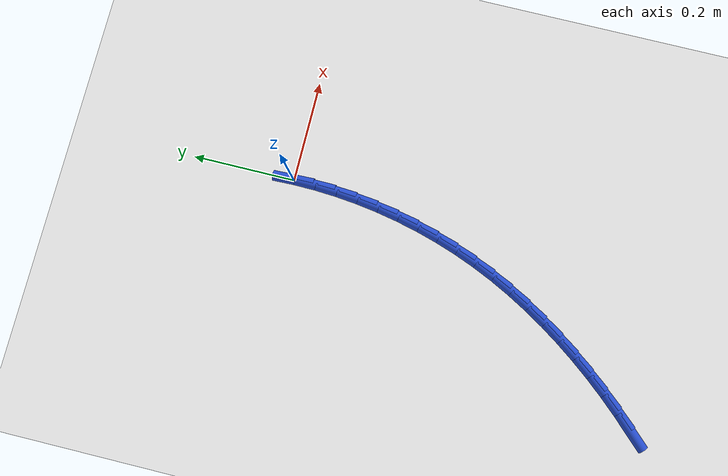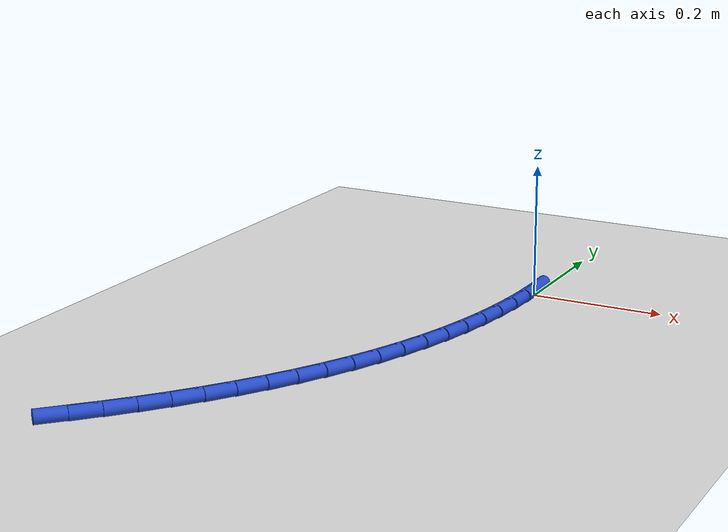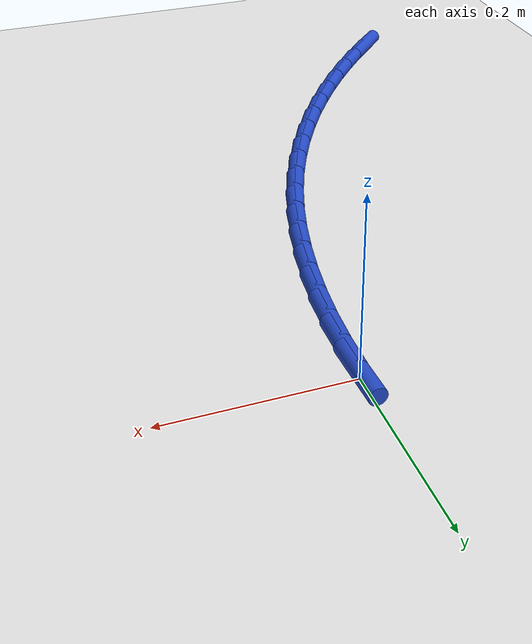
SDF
<sdf version="1.6">
 <world name="default">
  <model name="ground_plane">
   <static>1</static>
   <link name="link">
    <collision name="collision">
     <geometry><plane><normal>0 0 1</normal><size>100 100</size></plane></geometry>
     <surface><friction><ode><mu>100</mu><mu2>50</mu2></ode></friction></surface>
    </collision>
    <visual name="visual">
     <cast_shadows>0</cast_shadows>
     <geometry><plane><normal>0 0 1</normal><size>100 100</size></plane></geometry>
     <material>
      <script><uri>file://media/materials/scripts/gazebo.material</uri><name>Gazebo/WhiteGlow</name></script>
     </material>
    </visual>
   </link>
  </model>
  <model name="line">
   <link name="link_141">
    <pose>-0.3133545174314274 -0.7284267709780301 0.01 0 1.57 0.8107379526133516</pose>
    <collision name="collision">
     <geometry><cylinder><radius>0.01</radius><length>0.08</length></cylinder></geometry>
    </collision>
    <visual name="visual">
     <material>
      <script><name>Gazebo/Blue</name><uri>file://media/materials/scripts/gazebo.material</uri></script>
     </material>
     <geometry><cylinder><radius>0.01</radius><length>0.08</length></cylinder></geometry>
    </visual>
   </link>
   <link name="link_142">
    <pose>-0.2842198868301255 -0.6977768891015159 0.01 0 1.57 0.8430367750667596</pose>
    <collision name="collision">
     <geometry><cylinder><radius>0.01</radius><length>0.08</length></cylinder></geometry>
    </collision>
    <visual name="visual">
     <material>
      <script><name>Gazebo/Blue</name><uri>file://media/materials/scripts/gazebo.material</uri></script>
     </material>
     <geometry><cylinder><radius>0.01</radius><length>0.08</length></cylinder></geometry>
    </visual>
   </link>
   <link name="link_143">
    <pose>-0.2559354361058295 -0.6660283852688105 0.01 0 1.57 0.8764289840057469</pose>
    <collision name="collision">
     <geometry><cylinder><radius>0.01</radius><length>0.08</length></cylinder></geometry>
    </collision>
    <visual name="visual">
     <material>
      <script><name>Gazebo/Blue</name><uri>file://media/materials/scripts/gazebo.material</uri></script>
     </material>
     <geometry><cylinder><radius>0.01</radius><length>0.08</length></cylinder></geometry>
    </visual>
   </link>
   <link name="link_144">
    <pose>-0.22860843388724544 -0.6332112385360471 0.01 0 1.57 0.9110365193192674</pose>
    <collision name="collision">
     <geometry><cylinder><radius>0.01</radius><length>0.08</length></cylinder></geometry>
    </collision>
    <visual name="visual">
     <material>
      <script><name>Gazebo/Blue</name><uri>file://media/materials/scripts/gazebo.material</uri></script>
     </material>
     <geometry><cylinder><radius>0.01</radius><length>0.08</length></cylinder></geometry>
    </visual>
   </link>
   <link name="link_145">
    <pose>-0.20235177917692235 -0.5993631350631842 0.01 0 1.57 0.9470073469656637</pose>
    <collision name="collision">
     <geometry><cylinder><radius>0.01</radius><length>0.08</length></cylinder></geometry>
    </collision>
    <visual name="visual">
     <material>
      <script><name>Gazebo/Blue</name><uri>file://media/materials/scripts/gazebo.material</uri></script>
     </material>
     <geometry><cylinder><radius>0.01</radius><length>0.08</length></cylinder></geometry>
    </visual>
   </link>
   <link name="link_146">
    <pose>-0.17727837097740876 -0.5645217610101795 0.01 0 1.57 0.9844854716728983</pose>
    <collision name="collision">
     <geometry><cylinder><radius>0.01</radius><length>0.08</length></cylinder></geometry>
    </collision>
    <visual name="visual">
     <material>
      <script><name>Gazebo/Blue</name><uri>file://media/materials/scripts/gazebo.material</uri></script>
     </material>
     <geometry><cylinder><radius>0.01</radius><length>0.08</length></cylinder></geometry>
    </visual>
   </link>
   <link name="link_147">
    <pose>-0.15350110829125457 -0.5287248025369927 0.01 0 1.57 1.0236092266501242</pose>
    <collision name="collision">
     <geometry><cylinder><radius>0.01</radius><length>0.08</length></cylinder></geometry>
    </collision>
    <visual name="visual">
     <material>
      <script><name>Gazebo/Blue</name><uri>file://media/materials/scripts/gazebo.material</uri></script>
     </material>
     <geometry><cylinder><radius>0.01</radius><length>0.08</length></cylinder></geometry>
    </visual>
   </link>
   <link name="link_148">
    <pose>-0.13113289012100834 -0.4920099458035819 0.01 0 1.57 1.064508673669086</pose>
    <collision name="collision">
     <geometry><cylinder><radius>0.01</radius><length>0.08</length></cylinder></geometry>
    </collision>
    <visual name="visual">
     <material>
      <script><name>Gazebo/Blue</name><uri>file://media/materials/scripts/gazebo.material</uri></script>
     </material>
     <geometry><cylinder><radius>0.01</radius><length>0.08</length></cylinder></geometry>
    </visual>
   </link>
   <link name="link_149">
    <pose>-0.11028661546921903 -0.45441487696990523 0.01 0 1.57 1.107302022302507</pose>
    <collision name="collision">
     <geometry><cylinder><radius>0.01</radius><length>0.08</length></cylinder></geometry>
    </collision>
    <visual name="visual">
     <material>
      <script><name>Gazebo/Blue</name><uri>file://media/materials/scripts/gazebo.material</uri></script>
     </material>
     <geometry><cylinder><radius>0.01</radius><length>0.08</length></cylinder></geometry>
    </visual>
   </link>
   <link name="link_150">
    <pose>-0.09107518333843569 -0.4159772821959213 0.01 0 1.57 1.1520894416043694</pose>
    <collision name="collision">
     <geometry><cylinder><radius>0.01</radius><length>0.08</length></cylinder></geometry>
    </collision>
    <visual name="visual">
     <material>
      <script><name>Gazebo/Blue</name><uri>file://media/materials/scripts/gazebo.material</uri></script>
     </material>
     <geometry><cylinder><radius>0.01</radius><length>0.08</length></cylinder></geometry>
    </visual>
   </link>
   <link name="link_151">
    <pose>-0.07361143193420894 -0.3767348762188183 0.01 0 1.57 1.1982572393973359</pose>
    <collision name="collision">
     <geometry><cylinder><radius>0.01</radius><length>0.08</length></cylinder></geometry>
    </collision>
    <visual name="visual">
     <material>
      <script><name>Gazebo/Blue</name><uri>file://media/materials/scripts/gazebo.material</uri></script>
     </material>
     <geometry><cylinder><radius>0.01</radius><length>0.08</length></cylinder></geometry>
    </visual>
   </link>
   <link name="link_152">
    <pose>-0.0579811945611076 -0.33673806725254884 0.01 0 1.57 1.2440927357484644</pose>
    <collision name="collision">
     <geometry><cylinder><radius>0.01</radius><length>0.08</length></cylinder></geometry>
    </collision>
    <visual name="visual">
     <material>
      <script><name>Gazebo/Blue</name><uri>file://media/materials/scripts/gazebo.material</uri></script>
     </material>
     <geometry><cylinder><radius>0.01</radius><length>0.08</length></cylinder></geometry>
    </visual>
   </link>
   <link name="link_153">
    <pose>-0.04420094329187619 -0.29606986630360405 0.01 0 1.57 1.2893919025855047</pose>
    <collision name="collision">
     <geometry><cylinder><radius>0.01</radius><length>0.08</length></cylinder></geometry>
    </collision>
    <visual name="visual">
     <material>
      <script><name>Gazebo/Blue</name><uri>file://media/materials/scripts/gazebo.material</uri></script>
     </material>
     <geometry><cylinder><radius>0.01</radius><length>0.08</length></cylinder></geometry>
    </visual>
   </link>
   <link name="link_154">
    <pose>-0.032276168658471695 -0.25481844617976873 0.01 0 1.57 1.334240166445653</pose>
    <collision name="collision">
     <geometry><cylinder><radius>0.01</radius><length>0.08</length></cylinder></geometry>
    </collision>
    <visual name="visual">
     <material>
      <script><name>Gazebo/Blue</name><uri>file://media/materials/scripts/gazebo.material</uri></script>
     </material>
     <geometry><cylinder><radius>0.01</radius><length>0.08</length></cylinder></geometry>
    </visual>
   </link>
   <link name="link_155">
    <pose>-0.022212361192851107 -0.2130719796888276 0.01 0 1.57 1.378728491669643</pose>
    <collision name="collision">
     <geometry><cylinder><radius>0.01</radius><length>0.08</length></cylinder></geometry>
    </collision>
    <visual name="visual">
     <material>
      <script><name>Gazebo/Blue</name><uri>file://media/materials/scripts/gazebo.material</uri></script>
     </material>
     <geometry><cylinder><radius>0.01</radius><length>0.08</length></cylinder></geometry>
    </visual>
   </link>
   <link name="link_156">
    <pose>-0.014015011426971234 -0.1709186396385648 0.01 0 1.57 1.4229520650358478</pose>
    <collision name="collision">
     <geometry><cylinder><radius>0.01</radius><length>0.08</length></cylinder></geometry>
    </collision>
    <visual name="visual">
     <material>
      <script><name>Gazebo/Blue</name><uri>file://media/materials/scripts/gazebo.material</uri></script>
     </material>
     <geometry><cylinder><radius>0.01</radius><length>0.08</length></cylinder></geometry>
    </visual>
   </link>
   <link name="link_157">
    <pose>-0.007689609892789327 -0.1284465988367663 0.01 0 1.57 1.4670091170963975</pose>
    <collision name="collision">
     <geometry><cylinder><radius>0.01</radius><length>0.08</length></cylinder></geometry>
    </collision>
    <visual name="visual">
     <material>
      <script><name>Gazebo/Blue</name><uri>file://media/materials/scripts/gazebo.material</uri></script>
     </material>
     <geometry><cylinder><radius>0.01</radius><length>0.08</length></cylinder></geometry>
    </visual>
   </link>
   <link name="link_158">
    <pose>-0.003241647122262184 -0.0857440300912162 0.01 0 1.57 1.5109998487096468</pose>
    <collision name="collision">
     <geometry><cylinder><radius>0.01</radius><length>0.08</length></cylinder></geometry>
    </collision>
    <visual name="visual">
     <material>
      <script><name>Gazebo/Blue</name><uri>file://media/materials/scripts/gazebo.material</uri></script>
     </material>
     <geometry><cylinder><radius>0.01</radius><length>0.08</length></cylinder></geometry>
    </visual>
   </link>
   <link name="link_159">
    <pose>-0.0006766136473467634 -0.04289910620969926 0.01 0 1.57 1.555025425950691</pose>
    <collision name="collision">
     <geometry><cylinder><radius>0.01</radius><length>0.08</length></cylinder></geometry>
    </collision>
    <visual name="visual">
     <material>
      <script><name>Gazebo/Blue</name><uri>file://media/materials/scripts/gazebo.material</uri></script>
     </material>
     <geometry><cylinder><radius>0.01</radius><length>0.08</length></cylinder></geometry>
    </visual>
   </link>
   <link name="link_160">
    <pose>-2.949029909160572e-17 -1.249000902703301e-16 0.01 0 1.57 -1.5424056502635615</pose>
    <collision name="collision">
     <geometry><cylinder><radius>0.01</radius><length>0.08</length></cylinder></geometry>
    </collision>
    <visual name="visual">
     <material>
      <script><name>Gazebo/Blue</name><uri>file://media/materials/scripts/gazebo.material</uri></script>
     </material>
     <geometry><cylinder><radius>0.01</radius><length>0.08</length></cylinder></geometry>
    </visual>
   </link>
  </model>
 </world>
</sdf>
